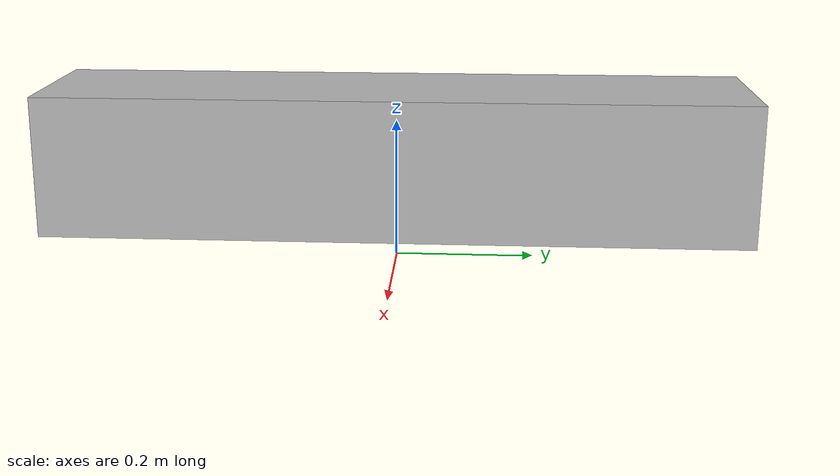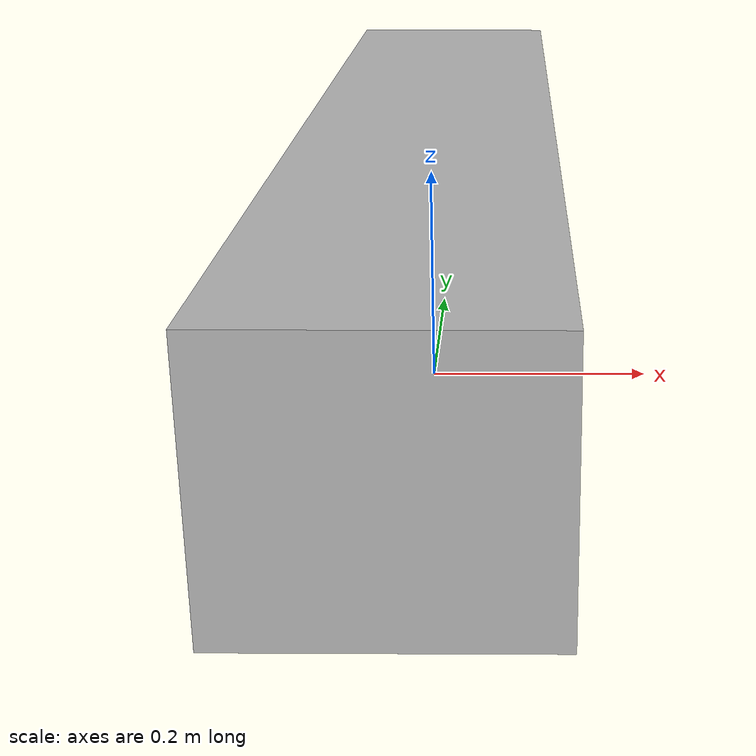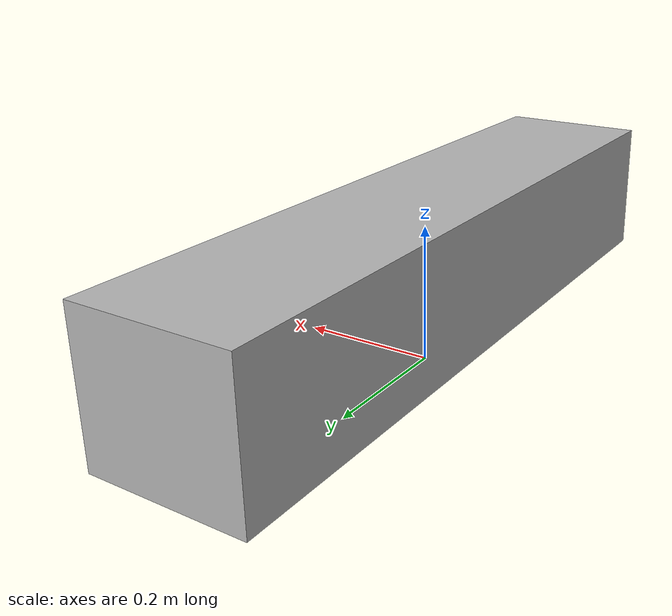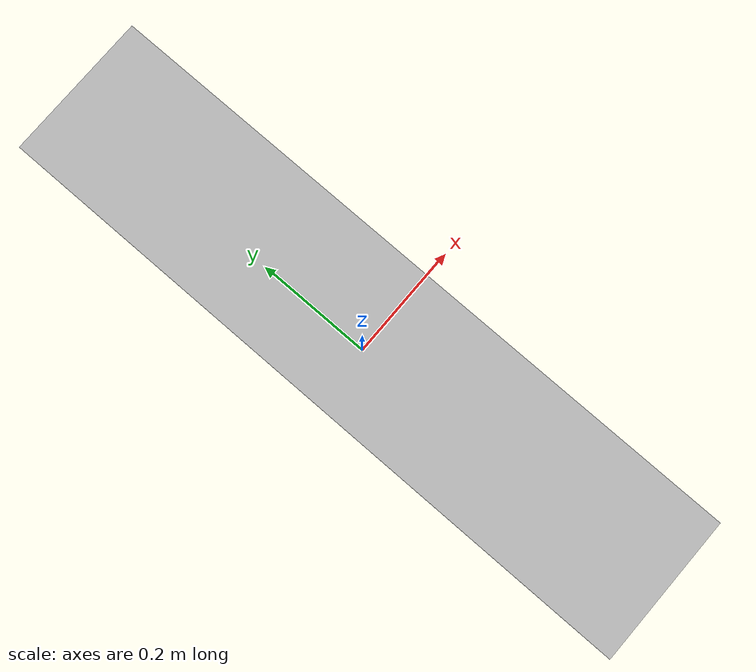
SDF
<?xml version="1.0" ?>
<sdf version="1.4">
  <model name="table">
    <static>true</static>
    <link name="link">

      <collision name="surface">
        <pose>0 0 0.15 0 0 0</pose>
        <geometry>
          <box>
            <size>0.22 1 0.2</size>
          </box>
        </geometry>

        <surface>
          <friction>
            <ode>
              <mu>0.1</mu>
              <mu2>0.1</mu2>
            </ode>
          </friction>
        </surface>
      </collision>

      <visual name="visual1">
        <pose>0 0 0.15 0 0 0</pose>
        <geometry>
          <box>
            <size>0.22 1 0.2</size>
          </box>
        </geometry>

      </visual>

      </link>

  </model>
</sdf>
